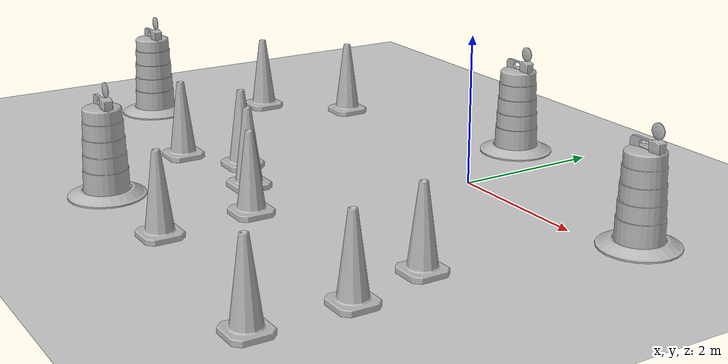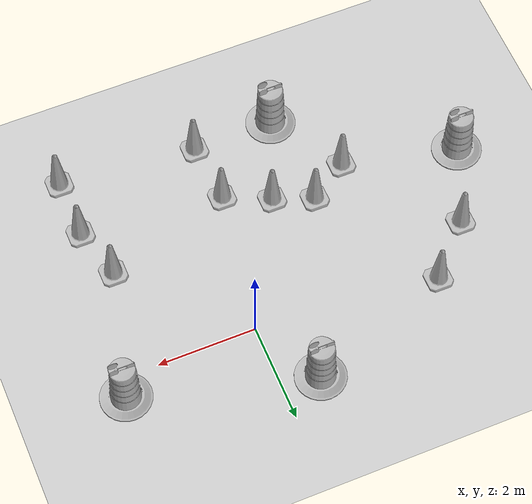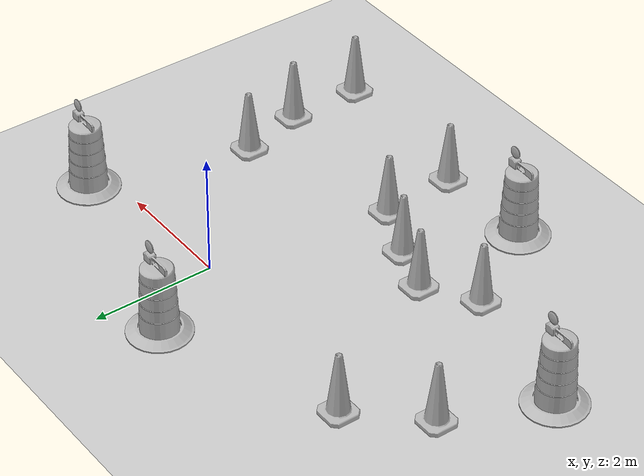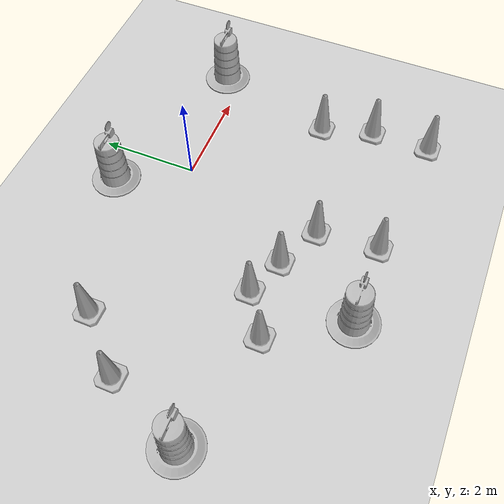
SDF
<sdf version="1.7">
 <world name="default">
  <light name="sun" type="directional">
   <pose>0 0 10 0 -0 0</pose>
   <diffuse>0.8 0.8 0.8 1</diffuse>
   <specular>0.2 0.2 0.2 1</specular>
   <attenuation>
    <range>1000</range>
    <constant>0.9</constant>
    <linear>0.01</linear>
    <quadratic>0.001</quadratic>
   </attenuation>
   <direction>-0.5 0.1 -0.9</direction>
   <spot><inner_angle>0</inner_angle><outer_angle>0</outer_angle><falloff>0</falloff></spot>
  </light>
  <model name="ground_plane">
   <static>1</static>
   <link name="link">
    <collision name="collision">
     <geometry><plane><normal>0 0 1</normal><size>100 100</size></plane></geometry>
     <surface>
      <contact><collide_bitmask>65535</collide_bitmask></contact>
      <friction><ode><mu>100</mu><mu2>50</mu2></ode></friction>
     </surface>
    </collision>
    <visual name="visual">
     <cast_shadows>0</cast_shadows>
     <geometry><plane><normal>0 0 1</normal><size>100 100</size></plane></geometry>
     <material>
      <script><uri>file://media/materials/scripts/gazebo.material</uri><name>Gazebo/Grey</name></script>
     </material>
    </visual>
   </link>
  </model>
  <gravity>0 0 -9.8</gravity>
  <magnetic_field>6e-06 2.3e-05 -4.2e-05</magnetic_field>
  <atmosphere type="adiabatic"/>
  <physics type="ode">
   <max_step_size>0.001</max_step_size>
   <real_time_factor>1</real_time_factor>
   <real_time_update_rate>1000</real_time_update_rate>
  </physics>
  <scene><ambient>0.4 0.4 0.4 1</ambient><background>0.7 0.7 0.7 1</background><shadows>1</shadows></scene>
  <spherical_coordinates>
   <surface_model>EARTH_WGS84</surface_model>
   <latitude_deg>0</latitude_deg>
   <longitude_deg>0</longitude_deg>
   <elevation>0</elevation>
   <heading_deg>0</heading_deg>
  </spherical_coordinates>
  <model name="Construction Barrel">
   <link name="link">
    <inertial>
     <pose>0 0 0.4 0 -0 0</pose>
     <mass>500</mass>
     <inertia><ixx>51.2096</ixx><iyy>51.2096</iyy><izz>25</izz><ixy>0</ixy><ixz>0</ixz><iyz>0</iyz></inertia>
    </inertial>
    <collision name="collision">
     <geometry><mesh><uri>model://construction_barrel/meshes/construction_barrel.dae</uri></mesh></geometry>
    </collision>
    <visual name="visual">
     <geometry><mesh><uri>model://construction_barrel/meshes/construction_barrel.dae</uri></mesh></geometry>
    </visual>
   </link>
   <pose>-0.756319 1.39223 -2e-06 7e-06 -4e-06 -2.6e-05</pose>
  </model>
  <model name="Construction Barrel_0">
   <link name="link">
    <inertial>
     <pose>0 0 0.4 0 -0 0</pose>
     <mass>500</mass>
     <inertia><ixx>51.2096</ixx><iyy>51.2096</iyy><izz>25</izz><ixy>0</ixy><ixz>0</ixz><iyz>0</iyz></inertia>
    </inertial>
    <collision name="collision">
     <geometry><mesh><uri>model://construction_barrel/meshes/construction_barrel.dae</uri></mesh></geometry>
    </collision>
    <visual name="visual">
     <geometry><mesh><uri>model://construction_barrel/meshes/construction_barrel.dae</uri></mesh></geometry>
    </visual>
   </link>
   <pose>2.79305 0.391057 -1e-06 3e-06 7e-06 -2.4e-05</pose>
  </model>
  <model name="Construction Cone">
   <link name="link">
    <collision name="collision">
     <geometry>
      <mesh><scale>10 10 10</scale><uri>model://construction_cone/meshes/construction_cone.dae</uri></mesh>
     </geometry>
    </collision>
    <visual name="visual">
     <geometry>
      <mesh><scale>10 10 10</scale><uri>model://construction_cone/meshes/construction_cone.dae</uri></mesh>
     </geometry>
    </visual>
    <inertial>
     <inertia><ixx>1</ixx><ixy>0</ixy><ixz>0</ixz><iyy>1</iyy><iyz>0</iyz><izz>1</izz></inertia>
     <mass>1</mass>
    </inertial>
   </link>
   <pose>-2.19745 -2.25046 -9e-06 -1e-06 -0 -0</pose>
  </model>
  <model name="Construction Cone_0">
   <link name="link">
    <collision name="collision">
     <geometry>
      <mesh><scale>10 10 10</scale><uri>model://construction_cone/meshes/construction_cone.dae</uri></mesh>
     </geometry>
    </collision>
    <visual name="visual">
     <geometry>
      <mesh><scale>10 10 10</scale><uri>model://construction_cone/meshes/construction_cone.dae</uri></mesh>
     </geometry>
    </visual>
    <inertial>
     <inertia><ixx>1</ixx><ixy>0</ixy><ixz>0</ixz><iyy>1</iyy><iyz>0</iyz><izz>1</izz></inertia>
     <mass>1</mass>
    </inertial>
   </link>
   <pose>-1.40494 -2.55135 -9e-06 -1e-06 -0 -0</pose>
  </model>
  <model name="Construction Cone_1">
   <link name="link">
    <collision name="collision">
     <geometry>
      <mesh><scale>10 10 10</scale><uri>model://construction_cone/meshes/construction_cone.dae</uri></mesh>
     </geometry>
    </collision>
    <visual name="visual">
     <geometry>
      <mesh><scale>10 10 10</scale><uri>model://construction_cone/meshes/construction_cone.dae</uri></mesh>
     </geometry>
    </visual>
    <inertial>
     <inertia><ixx>1</ixx><ixy>0</ixy><ixz>0</ixz><iyy>1</iyy><iyz>0</iyz><izz>1</izz></inertia>
     <mass>1</mass>
    </inertial>
   </link>
   <pose>-0.501986 -2.9745 -3e-06 0 -1e-06 0</pose>
  </model>
  <model name="Construction Cone_2">
   <link name="link">
    <collision name="collision">
     <geometry>
      <mesh><scale>10 10 10</scale><uri>model://construction_cone/meshes/construction_cone.dae</uri></mesh>
     </geometry>
    </collision>
    <visual name="visual">
     <geometry>
      <mesh><scale>10 10 10</scale><uri>model://construction_cone/meshes/construction_cone.dae</uri></mesh>
     </geometry>
    </visual>
    <inertial>
     <inertia><ixx>1</ixx><ixy>0</ixy><ixz>0</ixz><iyy>1</iyy><iyz>0</iyz><izz>1</izz></inertia>
     <mass>1</mass>
    </inertial>
   </link>
   <pose>2.09724 -2.18232 -6e-06 -4e-06 0 0</pose>
  </model>
  <model name="Construction Cone_3">
   <link name="link">
    <collision name="collision">
     <geometry>
      <mesh><scale>10 10 10</scale><uri>model://construction_cone/meshes/construction_cone.dae</uri></mesh>
     </geometry>
    </collision>
    <visual name="visual">
     <geometry>
      <mesh><scale>10 10 10</scale><uri>model://construction_cone/meshes/construction_cone.dae</uri></mesh>
     </geometry>
    </visual>
    <inertial>
     <inertia><ixx>1</ixx><ixy>0</ixy><ixz>0</ixz><iyy>1</iyy><iyz>0</iyz><izz>1</izz></inertia>
     <mass>1</mass>
    </inertial>
   </link>
   <pose>-3.69879 0.345038 -0 0 -0 0</pose>
  </model>
  <model name="Construction Cone_4">
   <link name="link">
    <collision name="collision">
     <geometry>
      <mesh><scale>10 10 10</scale><uri>model://construction_cone/meshes/construction_cone.dae</uri></mesh>
     </geometry>
    </collision>
    <visual name="visual">
     <geometry>
      <mesh><scale>10 10 10</scale><uri>model://construction_cone/meshes/construction_cone.dae</uri></mesh>
     </geometry>
    </visual>
    <inertial>
     <inertia><ixx>1</ixx><ixy>0</ixy><ixz>0</ixz><iyy>1</iyy><iyz>0</iyz><izz>1</izz></inertia>
     <mass>1</mass>
    </inertial>
   </link>
   <pose>-0.406438 -4.23374 -0 0 -0 0</pose>
  </model>
  <model name="Construction Cone_5">
   <link name="link">
    <collision name="collision">
     <geometry>
      <mesh><scale>10 10 10</scale><uri>model://construction_cone/meshes/construction_cone.dae</uri></mesh>
     </geometry>
    </collision>
    <visual name="visual">
     <geometry>
      <mesh><scale>10 10 10</scale><uri>model://construction_cone/meshes/construction_cone.dae</uri></mesh>
     </geometry>
    </visual>
    <inertial>
     <inertia><ixx>1</ixx><ixy>0</ixy><ixz>0</ixz><iyy>1</iyy><iyz>0</iyz><izz>1</izz></inertia>
     <mass>1</mass>
    </inertial>
   </link>
   <pose>2.38815 -3.2576 -6e-06 -4e-06 0 0</pose>
  </model>
  <model name="Construction Cone_6">
   <link name="link">
    <collision name="collision">
     <geometry>
      <mesh><scale>10 10 10</scale><uri>model://construction_cone/meshes/construction_cone.dae</uri></mesh>
     </geometry>
    </collision>
    <visual name="visual">
     <geometry>
      <mesh><scale>10 10 10</scale><uri>model://construction_cone/meshes/construction_cone.dae</uri></mesh>
     </geometry>
    </visual>
    <inertial>
     <inertia><ixx>1</ixx><ixy>0</ixy><ixz>0</ixz><iyy>1</iyy><iyz>0</iyz><izz>1</izz></inertia>
     <mass>1</mass>
    </inertial>
   </link>
   <pose>2.39316 -4.49605 -0 0 -0 0</pose>
  </model>
  <model name="Construction Cone_7">
   <link name="link">
    <collision name="collision">
     <geometry>
      <mesh><scale>10 10 10</scale><uri>model://construction_cone/meshes/construction_cone.dae</uri></mesh>
     </geometry>
    </collision>
    <visual name="visual">
     <geometry>
      <mesh><scale>10 10 10</scale><uri>model://construction_cone/meshes/construction_cone.dae</uri></mesh>
     </geometry>
    </visual>
    <inertial>
     <inertia><ixx>1</ixx><ixy>0</ixy><ixz>0</ixz><iyy>1</iyy><iyz>0</iyz><izz>1</izz></inertia>
     <mass>1</mass>
    </inertial>
   </link>
   <pose>-3.00495 -2.78053 -0 0 -0 0</pose>
  </model>
  <model name="Construction Cone_8">
   <link name="link">
    <collision name="collision">
     <geometry>
      <mesh><scale>10 10 10</scale><uri>model://construction_cone/meshes/construction_cone.dae</uri></mesh>
     </geometry>
    </collision>
    <visual name="visual">
     <geometry>
      <mesh><scale>10 10 10</scale><uri>model://construction_cone/meshes/construction_cone.dae</uri></mesh>
     </geometry>
    </visual>
    <inertial>
     <inertia><ixx>1</ixx><ixy>0</ixy><ixz>0</ixz><iyy>1</iyy><iyz>0</iyz><izz>1</izz></inertia>
     <mass>1</mass>
    </inertial>
   </link>
   <pose>-4.64786 -0.646522 -0 0 -0 0</pose>
  </model>
  <model name="Construction Barrel_1">
   <link name="link">
    <inertial>
     <pose>0 0 0.4 0 -0 0</pose>
     <mass>500</mass>
     <inertia><ixx>51.2096</ixx><iyy>51.2096</iyy><izz>25</izz><ixy>0</ixy><ixz>0</ixz><iyz>0</iyz></inertia>
    </inertial>
    <collision name="collision">
     <geometry><mesh><uri>model://construction_barrel/meshes/construction_barrel.dae</uri></mesh></geometry>
    </collision>
    <visual name="visual">
     <geometry><mesh><uri>model://construction_barrel/meshes/construction_barrel.dae</uri></mesh></geometry>
    </visual>
   </link>
   <pose>-5.31085 -2.2371 -1e-06 1e-06 4e-06 -1.2e-05</pose>
  </model>
  <model name="Construction Barrel_2">
   <link name="link">
    <inertial>
     <pose>0 0 0.4 0 -0 0</pose>
     <mass>500</mass>
     <inertia><ixx>51.2096</ixx><iyy>51.2096</iyy><izz>25</izz><ixy>0</ixy><ixz>0</ixz><iyz>0</iyz></inertia>
    </inertial>
    <collision name="collision">
     <geometry><mesh><uri>model://construction_barrel/meshes/construction_barrel.dae</uri></mesh></geometry>
    </collision>
    <visual name="visual">
     <geometry><mesh><uri>model://construction_barrel/meshes/construction_barrel.dae</uri></mesh></geometry>
    </visual>
   </link>
   <pose>-2.07693 -4.26199 1e-06 3e-06 2e-06 -6e-06</pose>
  </model>
  <audio><device>default</device></audio>
 </world>
</sdf>
